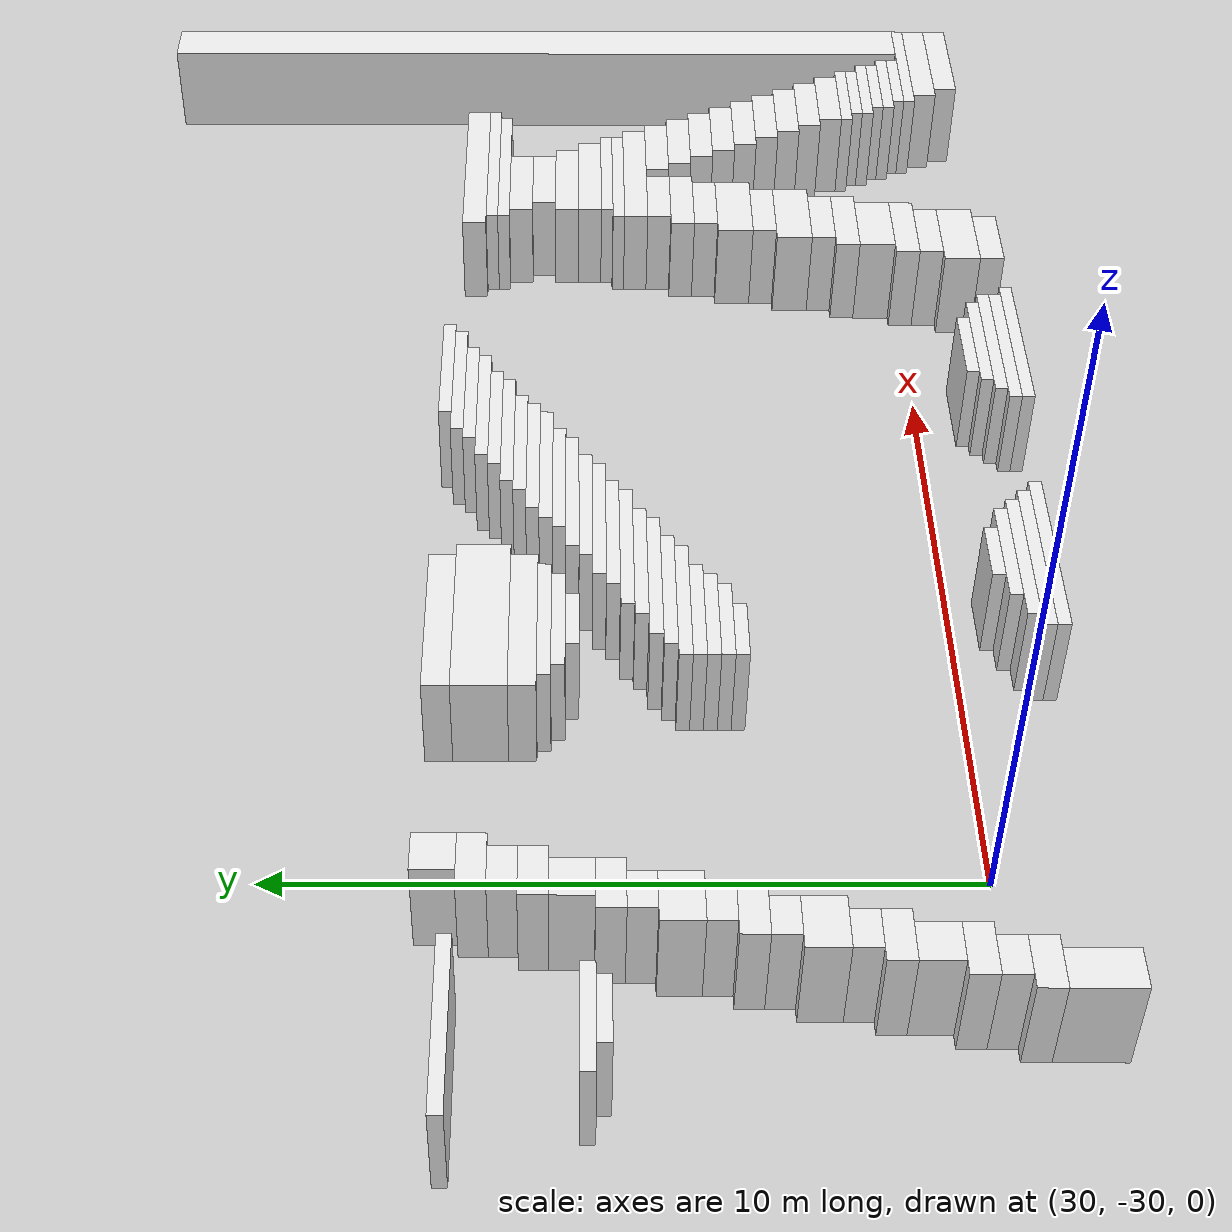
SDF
<sdf version="1.7">
 <world name="default">
  <model name="ground_plane">
   <static>1</static>
   <link name="link">
    <collision name="collision">
     <geometry><plane><normal>0 0 1</normal><size>120 120</size></plane></geometry>
    </collision>
    <visual name="visual">
     <geometry><plane><normal>0 0 1</normal><size>120 120</size></plane></geometry>
     <material>
      <script><uri>file://media/materials/scripts/gazebo.material</uri><name>Gazebo/Grey</name></script>
     </material>
    </visual>
   </link>
  </model>
  <model name="random_complex_03_model">
   <static>1</static>
   <link name="obs_2391">
    <pose>39.1000 -22.3000 0.8000 0 0 0</pose>
    <collision name="obs_2391_col"><geometry><box><size>2.2000 0.2000 1.6000</size></box></geometry></collision>
    <visual name="obs_2391_vis">
     <geometry><box><size>2.2000 0.2000 1.6000</size></box></geometry>
     <material>
      <script><uri>file://media/materials/scripts/gazebo.material</uri><name>Gazebo/White</name></script>
     </material>
    </visual>
   </link>
   <link name="obs_2392">
    <pose>33.5000 -22.4000 0.8000 0 0 0</pose>
    <collision name="obs_2392_col"><geometry><box><size>2.6000 0.4000 1.6000</size></box></geometry></collision>
    <visual name="obs_2392_vis">
     <geometry><box><size>2.6000 0.4000 1.6000</size></box></geometry>
     <material>
      <script><uri>file://media/materials/scripts/gazebo.material</uri><name>Gazebo/White</name></script>
     </material>
    </visual>
   </link>
   <link name="obs_2395">
    <pose>38.8000 -22.5000 0.8000 0 0 0</pose>
    <collision name="obs_2395_col"><geometry><box><size>2.4000 0.2000 1.6000</size></box></geometry></collision>
    <visual name="obs_2395_vis">
     <geometry><box><size>2.4000 0.2000 1.6000</size></box></geometry>
     <material>
      <script><uri>file://media/materials/scripts/gazebo.material</uri><name>Gazebo/White</name></script>
     </material>
    </visual>
   </link>
   <link name="obs_2397">
    <pose>29.3000 -22.5000 0.8000 0 0 0</pose>
    <collision name="obs_2397_col"><geometry><box><size>0.6000 0.6000 1.6000</size></box></geometry></collision>
    <visual name="obs_2397_vis">
     <geometry><box><size>0.6000 0.6000 1.6000</size></box></geometry>
     <material>
      <script><uri>file://media/materials/scripts/gazebo.material</uri><name>Gazebo/White</name></script>
     </material>
    </visual>
   </link>
   <link name="obs_2398">
    <pose>44.7000 -22.6000 0.8000 0 0 0</pose>
    <collision name="obs_2398_col"><geometry><box><size>3.4000 0.4000 1.6000</size></box></geometry></collision>
    <visual name="obs_2398_vis">
     <geometry><box><size>3.4000 0.4000 1.6000</size></box></geometry>
     <material>
      <script><uri>file://media/materials/scripts/gazebo.material</uri><name>Gazebo/White</name></script>
     </material>
    </visual>
   </link>
   <link name="obs_2400">
    <pose>26.7000 -22.7000 0.8000 0 0 0</pose>
    <collision name="obs_2400_col"><geometry><box><size>2.6000 0.2000 1.6000</size></box></geometry></collision>
    <visual name="obs_2400_vis">
     <geometry><box><size>2.6000 0.2000 1.6000</size></box></geometry>
     <material>
      <script><uri>file://media/materials/scripts/gazebo.material</uri><name>Gazebo/White</name></script>
     </material>
    </visual>
   </link>
   <link name="obs_2401">
    <pose>38.5000 -22.7000 0.8000 0 0 0</pose>
    <collision name="obs_2401_col"><geometry><box><size>2.2000 0.2000 1.6000</size></box></geometry></collision>
    <visual name="obs_2401_vis">
     <geometry><box><size>2.2000 0.2000 1.6000</size></box></geometry>
     <material>
      <script><uri>file://media/materials/scripts/gazebo.material</uri><name>Gazebo/White</name></script>
     </material>
    </visual>
   </link>
   <link name="obs_2404">
    <pose>38.2000 -22.9000 0.8000 0 0 0</pose>
    <collision name="obs_2404_col"><geometry><box><size>2.4000 0.2000 1.6000</size></box></geometry></collision>
    <visual name="obs_2404_vis">
     <geometry><box><size>2.4000 0.2000 1.6000</size></box></geometry>
     <material>
      <script><uri>file://media/materials/scripts/gazebo.material</uri><name>Gazebo/White</name></script>
     </material>
    </visual>
   </link>
   <link name="obs_2405">
    <pose>44.8000 -22.9000 0.8000 0 0 0</pose>
    <collision name="obs_2405_col"><geometry><box><size>3.2000 0.2000 1.6000</size></box></geometry></collision>
    <visual name="obs_2405_vis">
     <geometry><box><size>3.2000 0.2000 1.6000</size></box></geometry>
     <material>
      <script><uri>file://media/materials/scripts/gazebo.material</uri><name>Gazebo/White</name></script>
     </material>
    </visual>
   </link>
   <link name="obs_2407">
    <pose>29.2000 -23.0000 0.8000 0 0 0</pose>
    <collision name="obs_2407_col"><geometry><box><size>0.8000 0.4000 1.6000</size></box></geometry></collision>
    <visual name="obs_2407_vis">
     <geometry><box><size>0.8000 0.4000 1.6000</size></box></geometry>
     <material>
      <script><uri>file://media/materials/scripts/gazebo.material</uri><name>Gazebo/White</name></script>
     </material>
    </visual>
   </link>
   <link name="obs_2409">
    <pose>37.9000 -23.1000 0.8000 0 0 0</pose>
    <collision name="obs_2409_col"><geometry><box><size>2.2000 0.2000 1.6000</size></box></geometry></collision>
    <visual name="obs_2409_vis">
     <geometry><box><size>2.2000 0.2000 1.6000</size></box></geometry>
     <material>
      <script><uri>file://media/materials/scripts/gazebo.material</uri><name>Gazebo/White</name></script>
     </material>
    </visual>
   </link>
   <link name="obs_2410">
    <pose>44.7000 -23.1000 0.8000 0 0 0</pose>
    <collision name="obs_2410_col"><geometry><box><size>3.0000 0.2000 1.6000</size></box></geometry></collision>
    <visual name="obs_2410_vis">
     <geometry><box><size>3.0000 0.2000 1.6000</size></box></geometry>
     <material>
      <script><uri>file://media/materials/scripts/gazebo.material</uri><name>Gazebo/White</name></script>
     </material>
    </visual>
   </link>
   <link name="obs_2411">
    <pose>33.6000 -23.0000 0.8000 0 0 0</pose>
    <collision name="obs_2411_col"><geometry><box><size>2.8000 0.8000 1.6000</size></box></geometry></collision>
    <visual name="obs_2411_vis">
     <geometry><box><size>2.8000 0.8000 1.6000</size></box></geometry>
     <material>
      <script><uri>file://media/materials/scripts/gazebo.material</uri><name>Gazebo/White</name></script>
     </material>
    </visual>
   </link>
   <link name="obs_2415">
    <pose>37.6000 -23.3000 0.8000 0 0 0</pose>
    <collision name="obs_2415_col"><geometry><box><size>2.4000 0.2000 1.6000</size></box></geometry></collision>
    <visual name="obs_2415_vis">
     <geometry><box><size>2.4000 0.2000 1.6000</size></box></geometry>
     <material>
      <script><uri>file://media/materials/scripts/gazebo.material</uri><name>Gazebo/White</name></script>
     </material>
    </visual>
   </link>
   <link name="obs_2418">
    <pose>29.1000 -23.4000 0.8000 0 0 0</pose>
    <collision name="obs_2418_col"><geometry><box><size>0.6000 0.4000 1.6000</size></box></geometry></collision>
    <visual name="obs_2418_vis">
     <geometry><box><size>0.6000 0.4000 1.6000</size></box></geometry>
     <material>
      <script><uri>file://media/materials/scripts/gazebo.material</uri><name>Gazebo/White</name></script>
     </material>
    </visual>
   </link>
   <link name="obs_2419">
    <pose>44.2000 -23.4000 0.8000 0 0 0</pose>
    <collision name="obs_2419_col"><geometry><box><size>1.6000 0.4000 1.6000</size></box></geometry></collision>
    <visual name="obs_2419_vis">
     <geometry><box><size>1.6000 0.4000 1.6000</size></box></geometry>
     <material>
      <script><uri>file://media/materials/scripts/gazebo.material</uri><name>Gazebo/White</name></script>
     </material>
    </visual>
   </link>
   <link name="obs_2424">
    <pose>37.3000 -23.5000 0.8000 0 0 0</pose>
    <collision name="obs_2424_col"><geometry><box><size>2.2000 0.2000 1.6000</size></box></geometry></collision>
    <visual name="obs_2424_vis">
     <geometry><box><size>2.2000 0.2000 1.6000</size></box></geometry>
     <material>
      <script><uri>file://media/materials/scripts/gazebo.material</uri><name>Gazebo/White</name></script>
     </material>
    </visual>
   </link>
   <link name="obs_2425">
    <pose>33.5000 -23.6000 0.8000 0 0 0</pose>
    <collision name="obs_2425_col"><geometry><box><size>2.6000 0.4000 1.6000</size></box></geometry></collision>
    <visual name="obs_2425_vis">
     <geometry><box><size>2.6000 0.4000 1.6000</size></box></geometry>
     <material>
      <script><uri>file://media/materials/scripts/gazebo.material</uri><name>Gazebo/White</name></script>
     </material>
    </visual>
   </link>
   <link name="obs_2431">
    <pose>37.0000 -23.7000 0.8000 0 0 0</pose>
    <collision name="obs_2431_col"><geometry><box><size>2.4000 0.2000 1.6000</size></box></geometry></collision>
    <visual name="obs_2431_vis">
     <geometry><box><size>2.4000 0.2000 1.6000</size></box></geometry>
     <material>
      <script><uri>file://media/materials/scripts/gazebo.material</uri><name>Gazebo/White</name></script>
     </material>
    </visual>
   </link>
   <link name="obs_2433">
    <pose>29.0000 -23.8000 0.8000 0 0 0</pose>
    <collision name="obs_2433_col"><geometry><box><size>0.8000 0.4000 1.6000</size></box></geometry></collision>
    <visual name="obs_2433_vis">
     <geometry><box><size>0.8000 0.4000 1.6000</size></box></geometry>
     <material>
      <script><uri>file://media/materials/scripts/gazebo.material</uri><name>Gazebo/White</name></script>
     </material>
    </visual>
   </link>
   <link name="obs_2434">
    <pose>44.3000 -23.8000 0.8000 0 0 0</pose>
    <collision name="obs_2434_col"><geometry><box><size>1.4000 0.4000 1.6000</size></box></geometry></collision>
    <visual name="obs_2434_vis">
     <geometry><box><size>1.4000 0.4000 1.6000</size></box></geometry>
     <material>
      <script><uri>file://media/materials/scripts/gazebo.material</uri><name>Gazebo/White</name></script>
     </material>
    </visual>
   </link>
   <link name="obs_2437">
    <pose>33.5000 -23.9000 0.8000 0 0 0</pose>
    <collision name="obs_2437_col"><geometry><box><size>2.2000 0.2000 1.6000</size></box></geometry></collision>
    <visual name="obs_2437_vis">
     <geometry><box><size>2.2000 0.2000 1.6000</size></box></geometry>
     <material>
      <script><uri>file://media/materials/scripts/gazebo.material</uri><name>Gazebo/White</name></script>
     </material>
    </visual>
   </link>
   <link name="obs_2438">
    <pose>36.8000 -23.9000 0.8000 0 0 0</pose>
    <collision name="obs_2438_col"><geometry><box><size>2.4000 0.2000 1.6000</size></box></geometry></collision>
    <visual name="obs_2438_vis">
     <geometry><box><size>2.4000 0.2000 1.6000</size></box></geometry>
     <material>
      <script><uri>file://media/materials/scripts/gazebo.material</uri><name>Gazebo/White</name></script>
     </material>
    </visual>
   </link>
   <link name="obs_2446">
    <pose>33.5000 -24.1000 0.8000 0 0 0</pose>
    <collision name="obs_2446_col"><geometry><box><size>1.8000 0.2000 1.6000</size></box></geometry></collision>
    <visual name="obs_2446_vis">
     <geometry><box><size>1.8000 0.2000 1.6000</size></box></geometry>
     <material>
      <script><uri>file://media/materials/scripts/gazebo.material</uri><name>Gazebo/White</name></script>
     </material>
    </visual>
   </link>
   <link name="obs_2447">
    <pose>36.5000 -24.1000 0.8000 0 0 0</pose>
    <collision name="obs_2447_col"><geometry><box><size>2.2000 0.2000 1.6000</size></box></geometry></collision>
    <visual name="obs_2447_vis">
     <geometry><box><size>2.2000 0.2000 1.6000</size></box></geometry>
     <material>
      <script><uri>file://media/materials/scripts/gazebo.material</uri><name>Gazebo/White</name></script>
     </material>
    </visual>
   </link>
   <link name="obs_2448">
    <pose>44.3000 -24.2000 0.8000 0 0 0</pose>
    <collision name="obs_2448_col"><geometry><box><size>1.8000 0.4000 1.6000</size></box></geometry></collision>
    <visual name="obs_2448_vis">
     <geometry><box><size>1.8000 0.4000 1.6000</size></box></geometry>
     <material>
      <script><uri>file://media/materials/scripts/gazebo.material</uri><name>Gazebo/White</name></script>
     </material>
    </visual>
   </link>
   <link name="obs_2455">
    <pose>33.5000 -24.3000 0.8000 0 0 0</pose>
    <collision name="obs_2455_col"><geometry><box><size>1.0000 0.2000 1.6000</size></box></geometry></collision>
    <visual name="obs_2455_vis">
     <geometry><box><size>1.0000 0.2000 1.6000</size></box></geometry>
     <material>
      <script><uri>file://media/materials/scripts/gazebo.material</uri><name>Gazebo/White</name></script>
     </material>
    </visual>
   </link>
   <link name="obs_2456">
    <pose>36.2000 -24.3000 0.8000 0 0 0</pose>
    <collision name="obs_2456_col"><geometry><box><size>2.4000 0.2000 1.6000</size></box></geometry></collision>
    <visual name="obs_2456_vis">
     <geometry><box><size>2.4000 0.2000 1.6000</size></box></geometry>
     <material>
      <script><uri>file://media/materials/scripts/gazebo.material</uri><name>Gazebo/White</name></script>
     </material>
    </visual>
   </link>
   <link name="obs_2457">
    <pose>28.9000 -24.3000 0.8000 0 0 0</pose>
    <collision name="obs_2457_col"><geometry><box><size>0.6000 0.6000 1.6000</size></box></geometry></collision>
    <visual name="obs_2457_vis">
     <geometry><box><size>0.6000 0.6000 1.6000</size></box></geometry>
     <material>
      <script><uri>file://media/materials/scripts/gazebo.material</uri><name>Gazebo/White</name></script>
     </material>
    </visual>
   </link>
   <link name="obs_2461">
    <pose>26.8000 -24.5000 0.8000 0 0 0</pose>
    <collision name="obs_2461_col"><geometry><box><size>1.6000 0.2000 1.6000</size></box></geometry></collision>
    <visual name="obs_2461_vis">
     <geometry><box><size>1.6000 0.2000 1.6000</size></box></geometry>
     <material>
      <script><uri>file://media/materials/scripts/gazebo.material</uri><name>Gazebo/White</name></script>
     </material>
    </visual>
   </link>
   <link name="obs_2462">
    <pose>35.9000 -24.5000 0.8000 0 0 0</pose>
    <collision name="obs_2462_col"><geometry><box><size>2.2000 0.2000 1.6000</size></box></geometry></collision>
    <visual name="obs_2462_vis">
     <geometry><box><size>2.2000 0.2000 1.6000</size></box></geometry>
     <material>
      <script><uri>file://media/materials/scripts/gazebo.material</uri><name>Gazebo/White</name></script>
     </material>
    </visual>
   </link>
   <link name="obs_2464">
    <pose>44.4000 -24.6000 0.8000 0 0 0</pose>
    <collision name="obs_2464_col"><geometry><box><size>2.0000 0.4000 1.6000</size></box></geometry></collision>
    <visual name="obs_2464_vis">
     <geometry><box><size>2.0000 0.4000 1.6000</size></box></geometry>
     <material>
      <script><uri>file://media/materials/scripts/gazebo.material</uri><name>Gazebo/White</name></script>
     </material>
    </visual>
   </link>
   <link name="obs_2467">
    <pose>26.9000 -24.7000 0.8000 0 0 0</pose>
    <collision name="obs_2467_col"><geometry><box><size>1.0000 0.2000 1.6000</size></box></geometry></collision>
    <visual name="obs_2467_vis">
     <geometry><box><size>1.0000 0.2000 1.6000</size></box></geometry>
     <material>
      <script><uri>file://media/materials/scripts/gazebo.material</uri><name>Gazebo/White</name></script>
     </material>
    </visual>
   </link>
   <link name="obs_2468">
    <pose>35.6000 -24.7000 0.8000 0 0 0</pose>
    <collision name="obs_2468_col"><geometry><box><size>2.4000 0.2000 1.6000</size></box></geometry></collision>
    <visual name="obs_2468_vis">
     <geometry><box><size>2.4000 0.2000 1.6000</size></box></geometry>
     <material>
      <script><uri>file://media/materials/scripts/gazebo.material</uri><name>Gazebo/White</name></script>
     </material>
    </visual>
   </link>
   <link name="obs_2469">
    <pose>28.8000 -24.8000 0.8000 0 0 0</pose>
    <collision name="obs_2469_col"><geometry><box><size>0.8000 0.4000 1.6000</size></box></geometry></collision>
    <visual name="obs_2469_vis">
     <geometry><box><size>0.8000 0.4000 1.6000</size></box></geometry>
     <material>
      <script><uri>file://media/materials/scripts/gazebo.material</uri><name>Gazebo/White</name></script>
     </material>
    </visual>
   </link>
   <link name="obs_2473">
    <pose>35.3000 -24.9000 0.8000 0 0 0</pose>
    <collision name="obs_2473_col"><geometry><box><size>2.2000 0.2000 1.6000</size></box></geometry></collision>
    <visual name="obs_2473_vis">
     <geometry><box><size>2.2000 0.2000 1.6000</size></box></geometry>
     <material>
      <script><uri>file://media/materials/scripts/gazebo.material</uri><name>Gazebo/White</name></script>
     </material>
    </visual>
   </link>
   <link name="obs_2474">
    <pose>44.5000 -24.9000 0.8000 0 0 0</pose>
    <collision name="obs_2474_col"><geometry><box><size>2.2000 0.2000 1.6000</size></box></geometry></collision>
    <visual name="obs_2474_vis">
     <geometry><box><size>2.2000 0.2000 1.6000</size></box></geometry>
     <material>
      <script><uri>file://media/materials/scripts/gazebo.material</uri><name>Gazebo/White</name></script>
     </material>
    </visual>
   </link>
   <link name="obs_2479">
    <pose>35.0000 -25.1000 0.8000 0 0 0</pose>
    <collision name="obs_2479_col"><geometry><box><size>2.4000 0.2000 1.6000</size></box></geometry></collision>
    <visual name="obs_2479_vis">
     <geometry><box><size>2.4000 0.2000 1.6000</size></box></geometry>
     <material>
      <script><uri>file://media/materials/scripts/gazebo.material</uri><name>Gazebo/White</name></script>
     </material>
    </visual>
   </link>
   <link name="obs_2480">
    <pose>44.4000 -25.1000 0.8000 0 0 0</pose>
    <collision name="obs_2480_col"><geometry><box><size>2.4000 0.2000 1.6000</size></box></geometry></collision>
    <visual name="obs_2480_vis">
     <geometry><box><size>2.4000 0.2000 1.6000</size></box></geometry>
     <material>
      <script><uri>file://media/materials/scripts/gazebo.material</uri><name>Gazebo/White</name></script>
     </material>
    </visual>
   </link>
   <link name="obs_2482">
    <pose>28.7000 -25.2000 0.8000 0 0 0</pose>
    <collision name="obs_2482_col"><geometry><box><size>0.6000 0.4000 1.6000</size></box></geometry></collision>
    <visual name="obs_2482_vis">
     <geometry><box><size>0.6000 0.4000 1.6000</size></box></geometry>
     <material>
      <script><uri>file://media/materials/scripts/gazebo.material</uri><name>Gazebo/White</name></script>
     </material>
    </visual>
   </link>
   <link name="obs_2486">
    <pose>34.7000 -25.3000 0.8000 0 0 0</pose>
    <collision name="obs_2486_col"><geometry><box><size>2.2000 0.2000 1.6000</size></box></geometry></collision>
    <visual name="obs_2486_vis">
     <geometry><box><size>2.2000 0.2000 1.6000</size></box></geometry>
     <material>
      <script><uri>file://media/materials/scripts/gazebo.material</uri><name>Gazebo/White</name></script>
     </material>
    </visual>
   </link>
   <link name="obs_2489">
    <pose>44.5000 -25.4000 0.8000 0 0 0</pose>
    <collision name="obs_2489_col"><geometry><box><size>2.6000 0.4000 1.6000</size></box></geometry></collision>
    <visual name="obs_2489_vis">
     <geometry><box><size>2.6000 0.4000 1.6000</size></box></geometry>
     <material>
      <script><uri>file://media/materials/scripts/gazebo.material</uri><name>Gazebo/White</name></script>
     </material>
    </visual>
   </link>
   <link name="obs_2493">
    <pose>34.4000 -25.5000 0.8000 0 0 0</pose>
    <collision name="obs_2493_col"><geometry><box><size>2.4000 0.2000 1.6000</size></box></geometry></collision>
    <visual name="obs_2493_vis">
     <geometry><box><size>2.4000 0.2000 1.6000</size></box></geometry>
     <material>
      <script><uri>file://media/materials/scripts/gazebo.material</uri><name>Gazebo/White</name></script>
     </material>
    </visual>
   </link>
   <link name="obs_2499">
    <pose>34.1000 -25.7000 0.8000 0 0 0</pose>
    <collision name="obs_2499_col"><geometry><box><size>2.2000 0.2000 1.6000</size></box></geometry></collision>
    <visual name="obs_2499_vis">
     <geometry><box><size>2.2000 0.2000 1.6000</size></box></geometry>
     <material>
      <script><uri>file://media/materials/scripts/gazebo.material</uri><name>Gazebo/White</name></script>
     </material>
    </visual>
   </link>
   <link name="obs_2500">
    <pose>28.6000 -25.7000 0.8000 0 0 0</pose>
    <collision name="obs_2500_col"><geometry><box><size>0.8000 0.6000 1.6000</size></box></geometry></collision>
    <visual name="obs_2500_vis">
     <geometry><box><size>0.8000 0.6000 1.6000</size></box></geometry>
     <material>
      <script><uri>file://media/materials/scripts/gazebo.material</uri><name>Gazebo/White</name></script>
     </material>
    </visual>
   </link>
   <link name="obs_2501">
    <pose>43.8000 -25.8000 0.8000 0 0 0</pose>
    <collision name="obs_2501_col"><geometry><box><size>1.2000 0.4000 1.6000</size></box></geometry></collision>
    <visual name="obs_2501_vis">
     <geometry><box><size>1.2000 0.4000 1.6000</size></box></geometry>
     <material>
      <script><uri>file://media/materials/scripts/gazebo.material</uri><name>Gazebo/White</name></script>
     </material>
    </visual>
   </link>
   <link name="obs_2502">
    <pose>45.3000 -25.8000 0.8000 0 0 0</pose>
    <collision name="obs_2502_col"><geometry><box><size>1.4000 0.4000 1.6000</size></box></geometry></collision>
    <visual name="obs_2502_vis">
     <geometry><box><size>1.4000 0.4000 1.6000</size></box></geometry>
     <material>
      <script><uri>file://media/materials/scripts/gazebo.material</uri><name>Gazebo/White</name></script>
     </material>
    </visual>
   </link>
   <link name="obs_2507">
    <pose>33.9000 -25.9000 0.8000 0 0 0</pose>
    <collision name="obs_2507_col"><geometry><box><size>2.2000 0.2000 1.6000</size></box></geometry></collision>
    <visual name="obs_2507_vis">
     <geometry><box><size>2.2000 0.2000 1.6000</size></box></geometry>
     <material>
      <script><uri>file://media/materials/scripts/gazebo.material</uri><name>Gazebo/White</name></script>
     </material>
    </visual>
   </link>
   <link name="obs_2515">
    <pose>33.7000 -26.1000 0.8000 0 0 0</pose>
    <collision name="obs_2515_col"><geometry><box><size>1.8000 0.2000 1.6000</size></box></geometry></collision>
    <visual name="obs_2515_vis">
     <geometry><box><size>1.8000 0.2000 1.6000</size></box></geometry>
     <material>
      <script><uri>file://media/materials/scripts/gazebo.material</uri><name>Gazebo/White</name></script>
     </material>
    </visual>
   </link>
   <link name="obs_2516">
    <pose>28.5000 -26.2000 0.8000 0 0 0</pose>
    <collision name="obs_2516_col"><geometry><box><size>0.6000 0.4000 1.6000</size></box></geometry></collision>
    <visual name="obs_2516_vis">
     <geometry><box><size>0.6000 0.4000 1.6000</size></box></geometry>
     <material>
      <script><uri>file://media/materials/scripts/gazebo.material</uri><name>Gazebo/White</name></script>
     </material>
    </visual>
   </link>
   <link name="obs_2517">
    <pose>43.7000 -26.2000 0.8000 0 0 0</pose>
    <collision name="obs_2517_col"><geometry><box><size>1.4000 0.4000 1.6000</size></box></geometry></collision>
    <visual name="obs_2517_vis">
     <geometry><box><size>1.4000 0.4000 1.6000</size></box></geometry>
     <material>
      <script><uri>file://media/materials/scripts/gazebo.material</uri><name>Gazebo/White</name></script>
     </material>
    </visual>
   </link>
   <link name="obs_2518">
    <pose>45.5000 -26.2000 0.8000 0 0 0</pose>
    <collision name="obs_2518_col"><geometry><box><size>1.4000 0.4000 1.6000</size></box></geometry></collision>
    <visual name="obs_2518_vis">
     <geometry><box><size>1.4000 0.4000 1.6000</size></box></geometry>
     <material>
      <script><uri>file://media/materials/scripts/gazebo.material</uri><name>Gazebo/White</name></script>
     </material>
    </visual>
   </link>
   <link name="obs_2524">
    <pose>33.6000 -26.3000 0.8000 0 0 0</pose>
    <collision name="obs_2524_col"><geometry><box><size>1.6000 0.2000 1.6000</size></box></geometry></collision>
    <visual name="obs_2524_vis">
     <geometry><box><size>1.6000 0.2000 1.6000</size></box></geometry>
     <material>
      <script><uri>file://media/materials/scripts/gazebo.material</uri><name>Gazebo/White</name></script>
     </material>
    </visual>
   </link>
   <link name="obs_2529">
    <pose>33.5000 -26.5000 0.8000 0 0 0</pose>
    <collision name="obs_2529_col"><geometry><box><size>1.4000 0.2000 1.6000</size></box></geometry></collision>
    <visual name="obs_2529_vis">
     <geometry><box><size>1.4000 0.2000 1.6000</size></box></geometry>
     <material>
      <script><uri>file://media/materials/scripts/gazebo.material</uri><name>Gazebo/White</name></script>
     </material>
    </visual>
   </link>
   <link name="obs_2530">
    <pose>28.4000 -26.6000 0.8000 0 0 0</pose>
    <collision name="obs_2530_col"><geometry><box><size>0.8000 0.4000 1.6000</size></box></geometry></collision>
    <visual name="obs_2530_vis">
     <geometry><box><size>0.8000 0.4000 1.6000</size></box></geometry>
     <material>
      <script><uri>file://media/materials/scripts/gazebo.material</uri><name>Gazebo/White</name></script>
     </material>
    </visual>
   </link>
   <link name="obs_2531">
    <pose>43.6000 -26.6000 0.8000 0 0 0</pose>
    <collision name="obs_2531_col"><geometry><box><size>1.2000 0.4000 1.6000</size></box></geometry></collision>
    <visual name="obs_2531_vis">
     <geometry><box><size>1.2000 0.4000 1.6000</size></box></geometry>
     <material>
      <script><uri>file://media/materials/scripts/gazebo.material</uri><name>Gazebo/White</name></script>
     </material>
    </visual>
   </link>
   <link name="obs_2532">
    <pose>45.7000 -26.6000 0.8000 0 0 0</pose>
    <collision name="obs_2532_col"><geometry><box><size>1.4000 0.4000 1.6000</size></box></geometry></collision>
    <visual name="obs_2532_vis">
     <geometry><box><size>1.4000 0.4000 1.6000</size></box></geometry>
     <material>
      <script><uri>file://media/materials/scripts/gazebo.material</uri><name>Gazebo/White</name></script>
     </material>
    </visual>
   </link>
   <link name="obs_2536">
    <pose>33.3000 -26.7000 0.8000 0 0 0</pose>
    <collision name="obs_2536_col"><geometry><box><size>1.0000 0.2000 1.6000</size></box></geometry></collision>
    <visual name="obs_2536_vis">
     <geometry><box><size>1.0000 0.2000 1.6000</size></box></geometry>
     <material>
      <script><uri>file://media/materials/scripts/gazebo.material</uri><name>Gazebo/White</name></script>
     </material>
    </visual>
   </link>
   <link name="obs_2546">
    <pose>28.3000 -27.0000 0.8000 0 0 0</pose>
    <collision name="obs_2546_col"><geometry><box><size>0.6000 0.4000 1.6000</size></box></geometry></collision>
    <visual name="obs_2546_vis">
     <geometry><box><size>0.6000 0.4000 1.6000</size></box></geometry>
     <material>
      <script><uri>file://media/materials/scripts/gazebo.material</uri><name>Gazebo/White</name></script>
     </material>
    </visual>
   </link>
   <link name="obs_2547">
    <pose>45.9000 -27.0000 0.8000 0 0 0</pose>
    <collision name="obs_2547_col"><geometry><box><size>1.4000 0.4000 1.6000</size></box></geometry></collision>
    <visual name="obs_2547_vis">
     <geometry><box><size>1.4000 0.4000 1.6000</size></box></geometry>
     <material>
      <script><uri>file://media/materials/scripts/gazebo.material</uri><name>Gazebo/White</name></script>
     </material>
    </visual>
   </link>
   <link name="obs_2548">
    <pose>43.5000 -27.1000 0.8000 0 0 0</pose>
    <collision name="obs_2548_col"><geometry><box><size>1.4000 0.6000 1.6000</size></box></geometry></collision>
    <visual name="obs_2548_vis">
     <geometry><box><size>1.4000 0.6000 1.6000</size></box></geometry>
     <material>
      <script><uri>file://media/materials/scripts/gazebo.material</uri><name>Gazebo/White</name></script>
     </material>
    </visual>
   </link>
   <link name="obs_2550">
    <pose>46.1000 -27.4000 0.8000 0 0 0</pose>
    <collision name="obs_2550_col"><geometry><box><size>1.4000 0.4000 1.6000</size></box></geometry></collision>
    <visual name="obs_2550_vis">
     <geometry><box><size>1.4000 0.4000 1.6000</size></box></geometry>
     <material>
      <script><uri>file://media/materials/scripts/gazebo.material</uri><name>Gazebo/White</name></script>
     </material>
    </visual>
   </link>
   <link name="obs_2552">
    <pose>28.2000 -27.5000 0.8000 0 0 0</pose>
    <collision name="obs_2552_col"><geometry><box><size>0.8000 0.6000 1.6000</size></box></geometry></collision>
    <visual name="obs_2552_vis">
     <geometry><box><size>0.8000 0.6000 1.6000</size></box></geometry>
     <material>
      <script><uri>file://media/materials/scripts/gazebo.material</uri><name>Gazebo/White</name></script>
     </material>
    </visual>
   </link>
   <link name="obs_2553">
    <pose>43.4000 -27.6000 0.8000 0 0 0</pose>
    <collision name="obs_2553_col"><geometry><box><size>1.2000 0.4000 1.6000</size></box></geometry></collision>
    <visual name="obs_2553_vis">
     <geometry><box><size>1.2000 0.4000 1.6000</size></box></geometry>
     <material>
      <script><uri>file://media/materials/scripts/gazebo.material</uri><name>Gazebo/White</name></script>
     </material>
    </visual>
   </link>
   <link name="obs_2555">
    <pose>46.3000 -27.8000 0.8000 0 0 0</pose>
    <collision name="obs_2555_col"><geometry><box><size>1.4000 0.4000 1.6000</size></box></geometry></collision>
    <visual name="obs_2555_vis">
     <geometry><box><size>1.4000 0.4000 1.6000</size></box></geometry>
     <material>
      <script><uri>file://media/materials/scripts/gazebo.material</uri><name>Gazebo/White</name></script>
     </material>
    </visual>
   </link>
   <link name="obs_2556">
    <pose>28.1000 -28.0000 0.8000 0 0 0</pose>
    <collision name="obs_2556_col"><geometry><box><size>0.6000 0.4000 1.6000</size></box></geometry></collision>
    <visual name="obs_2556_vis">
     <geometry><box><size>0.6000 0.4000 1.6000</size></box></geometry>
     <material>
      <script><uri>file://media/materials/scripts/gazebo.material</uri><name>Gazebo/White</name></script>
     </material>
    </visual>
   </link>
   <link name="obs_2558">
    <pose>43.3000 -28.1000 0.8000 0 0 0</pose>
    <collision name="obs_2558_col"><geometry><box><size>1.4000 0.6000 1.6000</size></box></geometry></collision>
    <visual name="obs_2558_vis">
     <geometry><box><size>1.4000 0.6000 1.6000</size></box></geometry>
     <material>
      <script><uri>file://media/materials/scripts/gazebo.material</uri><name>Gazebo/White</name></script>
     </material>
    </visual>
   </link>
   <link name="obs_2559">
    <pose>46.5000 -28.2000 0.8000 0 0 0</pose>
    <collision name="obs_2559_col"><geometry><box><size>1.4000 0.4000 1.6000</size></box></geometry></collision>
    <visual name="obs_2559_vis">
     <geometry><box><size>1.4000 0.4000 1.6000</size></box></geometry>
     <material>
      <script><uri>file://media/materials/scripts/gazebo.material</uri><name>Gazebo/White</name></script>
     </material>
    </visual>
   </link>
   <link name="obs_2561">
    <pose>28.0000 -28.4000 0.8000 0 0 0</pose>
    <collision name="obs_2561_col"><geometry><box><size>0.8000 0.4000 1.6000</size></box></geometry></collision>
    <visual name="obs_2561_vis">
     <geometry><box><size>0.8000 0.4000 1.6000</size></box></geometry>
     <material>
      <script><uri>file://media/materials/scripts/gazebo.material</uri><name>Gazebo/White</name></script>
     </material>
    </visual>
   </link>
   <link name="obs_2563">
    <pose>43.2000 -28.6000 0.8000 0 0 0</pose>
    <collision name="obs_2563_col"><geometry><box><size>1.2000 0.4000 1.6000</size></box></geometry></collision>
    <visual name="obs_2563_vis">
     <geometry><box><size>1.2000 0.4000 1.6000</size></box></geometry>
     <material>
      <script><uri>file://media/materials/scripts/gazebo.material</uri><name>Gazebo/White</name></script>
     </material>
    </visual>
   </link>
   <link name="obs_2564">
    <pose>46.7000 -28.6000 0.8000 0 0 0</pose>
    <collision name="obs_2564_col"><geometry><box><size>1.4000 0.4000 1.6000</size></box></geometry></collision>
    <visual name="obs_2564_vis">
     <geometry><box><size>1.4000 0.4000 1.6000</size></box></geometry>
     <material>
      <script><uri>file://media/materials/scripts/gazebo.material</uri><name>Gazebo/White</name></script>
     </material>
    </visual>
   </link>
   <link name="obs_2571">
    <pose>27.9000 -28.9000 0.8000 0 0 0</pose>
    <collision name="obs_2571_col"><geometry><box><size>0.6000 0.6000 1.6000</size></box></geometry></collision>
    <visual name="obs_2571_vis">
     <geometry><box><size>0.6000 0.6000 1.6000</size></box></geometry>
     <material>
      <script><uri>file://media/materials/scripts/gazebo.material</uri><name>Gazebo/White</name></script>
     </material>
    </visual>
   </link>
   <link name="obs_2572">
    <pose>43.1000 -29.0000 0.8000 0 0 0</pose>
    <collision name="obs_2572_col"><geometry><box><size>1.4000 0.4000 1.6000</size></box></geometry></collision>
    <visual name="obs_2572_vis">
     <geometry><box><size>1.4000 0.4000 1.6000</size></box></geometry>
     <material>
      <script><uri>file://media/materials/scripts/gazebo.material</uri><name>Gazebo/White</name></script>
     </material>
    </visual>
   </link>
   <link name="obs_2573">
    <pose>46.9000 -29.0000 0.8000 0 0 0</pose>
    <collision name="obs_2573_col"><geometry><box><size>1.4000 0.4000 1.6000</size></box></geometry></collision>
    <visual name="obs_2573_vis">
     <geometry><box><size>1.4000 0.4000 1.6000</size></box></geometry>
     <material>
      <script><uri>file://media/materials/scripts/gazebo.material</uri><name>Gazebo/White</name></script>
     </material>
    </visual>
   </link>
   <link name="obs_2581">
    <pose>47.0000 -29.3000 0.8000 0 0 0</pose>
    <collision name="obs_2581_col"><geometry><box><size>1.6000 0.2000 1.6000</size></box></geometry></collision>
    <visual name="obs_2581_vis">
     <geometry><box><size>1.6000 0.2000 1.6000</size></box></geometry>
     <material>
      <script><uri>file://media/materials/scripts/gazebo.material</uri><name>Gazebo/White</name></script>
     </material>
    </visual>
   </link>
   <link name="obs_2582">
    <pose>27.8000 -29.4000 0.8000 0 0 0</pose>
    <collision name="obs_2582_col"><geometry><box><size>0.8000 0.4000 1.6000</size></box></geometry></collision>
    <visual name="obs_2582_vis">
     <geometry><box><size>0.8000 0.4000 1.6000</size></box></geometry>
     <material>
      <script><uri>file://media/materials/scripts/gazebo.material</uri><name>Gazebo/White</name></script>
     </material>
    </visual>
   </link>
   <link name="obs_2586">
    <pose>47.1000 -29.5000 0.8000 0 0 0</pose>
    <collision name="obs_2586_col"><geometry><box><size>1.4000 0.2000 1.6000</size></box></geometry></collision>
    <visual name="obs_2586_vis">
     <geometry><box><size>1.4000 0.2000 1.6000</size></box></geometry>
     <material>
      <script><uri>file://media/materials/scripts/gazebo.material</uri><name>Gazebo/White</name></script>
     </material>
    </visual>
   </link>
   <link name="obs_2587">
    <pose>43.0000 -29.5000 0.8000 0 0 0</pose>
    <collision name="obs_2587_col"><geometry><box><size>1.2000 0.6000 1.6000</size></box></geometry></collision>
    <visual name="obs_2587_vis">
     <geometry><box><size>1.2000 0.6000 1.6000</size></box></geometry>
     <material>
      <script><uri>file://media/materials/scripts/gazebo.material</uri><name>Gazebo/White</name></script>
     </material>
    </visual>
   </link>
   <link name="obs_2592">
    <pose>47.2000 -29.7000 0.8000 0 0 0</pose>
    <collision name="obs_2592_col"><geometry><box><size>1.6000 0.2000 1.6000</size></box></geometry></collision>
    <visual name="obs_2592_vis">
     <geometry><box><size>1.6000 0.2000 1.6000</size></box></geometry>
     <material>
      <script><uri>file://media/materials/scripts/gazebo.material</uri><name>Gazebo/White</name></script>
     </material>
    </visual>
   </link>
   <link name="obs_2593">
    <pose>27.7000 -29.8000 0.8000 0 0 0</pose>
    <collision name="obs_2593_col"><geometry><box><size>0.6000 0.4000 1.6000</size></box></geometry></collision>
    <visual name="obs_2593_vis">
     <geometry><box><size>0.6000 0.4000 1.6000</size></box></geometry>
     <material>
      <script><uri>file://media/materials/scripts/gazebo.material</uri><name>Gazebo/White</name></script>
     </material>
    </visual>
   </link>
   <link name="obs_2597">
    <pose>47.3000 -29.9000 0.8000 0 0 0</pose>
    <collision name="obs_2597_col"><geometry><box><size>1.4000 0.2000 1.6000</size></box></geometry></collision>
    <visual name="obs_2597_vis">
     <geometry><box><size>1.4000 0.2000 1.6000</size></box></geometry>
     <material>
      <script><uri>file://media/materials/scripts/gazebo.material</uri><name>Gazebo/White</name></script>
     </material>
    </visual>
   </link>
   <link name="obs_2598">
    <pose>42.9000 -30.0000 0.8000 0 0 0</pose>
    <collision name="obs_2598_col"><geometry><box><size>1.4000 0.4000 1.6000</size></box></geometry></collision>
    <visual name="obs_2598_vis">
     <geometry><box><size>1.4000 0.4000 1.6000</size></box></geometry>
     <material>
      <script><uri>file://media/materials/scripts/gazebo.material</uri><name>Gazebo/White</name></script>
     </material>
    </visual>
   </link>
   <link name="obs_2602">
    <pose>47.4000 -30.1000 0.8000 0 0 0</pose>
    <collision name="obs_2602_col"><geometry><box><size>1.6000 0.2000 1.6000</size></box></geometry></collision>
    <visual name="obs_2602_vis">
     <geometry><box><size>1.6000 0.2000 1.6000</size></box></geometry>
     <material>
      <script><uri>file://media/materials/scripts/gazebo.material</uri><name>Gazebo/White</name></script>
     </material>
    </visual>
   </link>
   <link name="obs_2604">
    <pose>48.8000 -23.6000 0.8000 0 0 0</pose>
    <collision name="obs_2604_col"><geometry><box><size>0.8000 13.6000 1.6000</size></box></geometry></collision>
    <visual name="obs_2604_vis">
     <geometry><box><size>0.8000 13.6000 1.6000</size></box></geometry>
     <material>
      <script><uri>file://media/materials/scripts/gazebo.material</uri><name>Gazebo/White</name></script>
     </material>
    </visual>
   </link>
   <link name="obs_2605">
    <pose>27.6000 -30.2000 0.8000 0 0 0</pose>
    <collision name="obs_2605_col"><geometry><box><size>0.8000 0.4000 1.6000</size></box></geometry></collision>
    <visual name="obs_2605_vis">
     <geometry><box><size>0.8000 0.4000 1.6000</size></box></geometry>
     <material>
      <script><uri>file://media/materials/scripts/gazebo.material</uri><name>Gazebo/White</name></script>
     </material>
    </visual>
   </link>
   <link name="obs_2608">
    <pose>47.5000 -30.3000 0.8000 0 0 0</pose>
    <collision name="obs_2608_col"><geometry><box><size>1.4000 0.2000 1.6000</size></box></geometry></collision>
    <visual name="obs_2608_vis">
     <geometry><box><size>1.4000 0.2000 1.6000</size></box></geometry>
     <material>
      <script><uri>file://media/materials/scripts/gazebo.material</uri><name>Gazebo/White</name></script>
     </material>
    </visual>
   </link>
   <link name="obs_2610">
    <pose>42.8000 -30.4000 0.8000 0 0 0</pose>
    <collision name="obs_2610_col"><geometry><box><size>1.2000 0.4000 1.6000</size></box></geometry></collision>
    <visual name="obs_2610_vis">
     <geometry><box><size>1.2000 0.4000 1.6000</size></box></geometry>
     <material>
      <script><uri>file://media/materials/scripts/gazebo.material</uri><name>Gazebo/White</name></script>
     </material>
    </visual>
   </link>
   <link name="obs_2613">
    <pose>34.9000 -30.5000 0.8000 0 0 0</pose>
    <collision name="obs_2613_col"><geometry><box><size>1.0000 0.2000 1.6000</size></box></geometry></collision>
    <visual name="obs_2613_vis">
     <geometry><box><size>1.0000 0.2000 1.6000</size></box></geometry>
     <material>
      <script><uri>file://media/materials/scripts/gazebo.material</uri><name>Gazebo/White</name></script>
     </material>
    </visual>
   </link>
   <link name="obs_2614">
    <pose>48.0000 -30.5000 0.8000 0 0 0</pose>
    <collision name="obs_2614_col"><geometry><box><size>2.4000 0.2000 1.6000</size></box></geometry></collision>
    <visual name="obs_2614_vis">
     <geometry><box><size>2.4000 0.2000 1.6000</size></box></geometry>
     <material>
      <script><uri>file://media/materials/scripts/gazebo.material</uri><name>Gazebo/White</name></script>
     </material>
    </visual>
   </link>
   <link name="obs_2618">
    <pose>34.9000 -30.7000 0.8000 0 0 0</pose>
    <collision name="obs_2618_col"><geometry><box><size>1.8000 0.2000 1.6000</size></box></geometry></collision>
    <visual name="obs_2618_vis">
     <geometry><box><size>1.8000 0.2000 1.6000</size></box></geometry>
     <material>
      <script><uri>file://media/materials/scripts/gazebo.material</uri><name>Gazebo/White</name></script>
     </material>
    </visual>
   </link>
   <link name="obs_2619">
    <pose>39.7000 -30.7000 0.8000 0 0 0</pose>
    <collision name="obs_2619_col"><geometry><box><size>1.4000 0.2000 1.6000</size></box></geometry></collision>
    <visual name="obs_2619_vis">
     <geometry><box><size>1.4000 0.2000 1.6000</size></box></geometry>
     <material>
      <script><uri>file://media/materials/scripts/gazebo.material</uri><name>Gazebo/White</name></script>
     </material>
    </visual>
   </link>
   <link name="obs_2621">
    <pose>48.1000 -30.8000 0.8000 0 0 0</pose>
    <collision name="obs_2621_col"><geometry><box><size>2.2000 0.4000 1.6000</size></box></geometry></collision>
    <visual name="obs_2621_vis">
     <geometry><box><size>2.2000 0.4000 1.6000</size></box></geometry>
     <material>
      <script><uri>file://media/materials/scripts/gazebo.material</uri><name>Gazebo/White</name></script>
     </material>
    </visual>
   </link>
   <link name="obs_2624">
    <pose>34.8000 -30.9000 0.8000 0 0 0</pose>
    <collision name="obs_2624_col"><geometry><box><size>2.4000 0.2000 1.6000</size></box></geometry></collision>
    <visual name="obs_2624_vis">
     <geometry><box><size>2.4000 0.2000 1.6000</size></box></geometry>
     <material>
      <script><uri>file://media/materials/scripts/gazebo.material</uri><name>Gazebo/White</name></script>
     </material>
    </visual>
   </link>
   <link name="obs_2625">
    <pose>39.8000 -30.9000 0.8000 0 0 0</pose>
    <collision name="obs_2625_col"><geometry><box><size>2.0000 0.2000 1.6000</size></box></geometry></collision>
    <visual name="obs_2625_vis">
     <geometry><box><size>2.0000 0.2000 1.6000</size></box></geometry>
     <material>
      <script><uri>file://media/materials/scripts/gazebo.material</uri><name>Gazebo/White</name></script>
     </material>
    </visual>
   </link>
   <link name="obs_2626">
    <pose>42.7000 -30.9000 0.8000 0 0 0</pose>
    <collision name="obs_2626_col"><geometry><box><size>1.4000 0.6000 1.6000</size></box></geometry></collision>
    <visual name="obs_2626_vis">
     <geometry><box><size>1.4000 0.6000 1.6000</size></box></geometry>
     <material>
      <script><uri>file://media/materials/scripts/gazebo.material</uri><name>Gazebo/White</name></script>
     </material>
    </visual>
   </link>
   <link name="obs_2630">
    <pose>34.8000 -31.1000 0.8000 0 0 0</pose>
    <collision name="obs_2630_col"><geometry><box><size>2.8000 0.2000 1.6000</size></box></geometry></collision>
    <visual name="obs_2630_vis">
     <geometry><box><size>2.8000 0.2000 1.6000</size></box></geometry>
     <material>
      <script><uri>file://media/materials/scripts/gazebo.material</uri><name>Gazebo/White</name></script>
     </material>
    </visual>
   </link>
   <link name="obs_2631">
    <pose>39.8000 -31.1000 0.8000 0 0 0</pose>
    <collision name="obs_2631_col"><geometry><box><size>2.4000 0.2000 1.6000</size></box></geometry></collision>
    <visual name="obs_2631_vis">
     <geometry><box><size>2.4000 0.2000 1.6000</size></box></geometry>
     <material>
      <script><uri>file://media/materials/scripts/gazebo.material</uri><name>Gazebo/White</name></script>
     </material>
    </visual>
   </link>
   <link name="obs_2632">
    <pose>27.5000 -30.9000 0.8000 0 0 0</pose>
    <collision name="obs_2632_col"><geometry><box><size>0.6000 1.0000 1.6000</size></box></geometry></collision>
    <visual name="obs_2632_vis">
     <geometry><box><size>0.6000 1.0000 1.6000</size></box></geometry>
     <material>
      <script><uri>file://media/materials/scripts/gazebo.material</uri><name>Gazebo/White</name></script>
     </material>
    </visual>
   </link>
   <link name="obs_2633">
    <pose>48.2000 -31.2000 0.8000 0 0 0</pose>
    <collision name="obs_2633_col"><geometry><box><size>2.0000 0.4000 1.6000</size></box></geometry></collision>
    <visual name="obs_2633_vis">
     <geometry><box><size>2.0000 0.4000 1.6000</size></box></geometry>
     <material>
      <script><uri>file://media/materials/scripts/gazebo.material</uri><name>Gazebo/White</name></script>
     </material>
    </visual>
   </link>
   <link name="obs_2637">
    <pose>34.9000 -31.3000 0.8000 0 0 0</pose>
    <collision name="obs_2637_col"><geometry><box><size>3.0000 0.2000 1.6000</size></box></geometry></collision>
    <visual name="obs_2637_vis">
     <geometry><box><size>3.0000 0.2000 1.6000</size></box></geometry>
     <material>
      <script><uri>file://media/materials/scripts/gazebo.material</uri><name>Gazebo/White</name></script>
     </material>
    </visual>
   </link>
   <link name="obs_2638">
    <pose>39.7000 -31.3000 0.8000 0 0 0</pose>
    <collision name="obs_2638_col"><geometry><box><size>2.6000 0.2000 1.6000</size></box></geometry></collision>
    <visual name="obs_2638_vis">
     <geometry><box><size>2.6000 0.2000 1.6000</size></box></geometry>
     <material>
      <script><uri>file://media/materials/scripts/gazebo.material</uri><name>Gazebo/White</name></script>
     </material>
    </visual>
   </link>
   <link name="obs_2639">
    <pose>42.6000 -31.4000 0.8000 0 0 0</pose>
    <collision name="obs_2639_col"><geometry><box><size>1.2000 0.4000 1.6000</size></box></geometry></collision>
    <visual name="obs_2639_vis">
     <geometry><box><size>1.2000 0.4000 1.6000</size></box></geometry>
     <material>
      <script><uri>file://media/materials/scripts/gazebo.material</uri><name>Gazebo/White</name></script>
     </material>
    </visual>
   </link>
   <link name="obs_2643">
    <pose>39.8000 -31.5000 0.8000 0 0 0</pose>
    <collision name="obs_2643_col"><geometry><box><size>2.8000 0.2000 1.6000</size></box></geometry></collision>
    <visual name="obs_2643_vis">
     <geometry><box><size>2.8000 0.2000 1.6000</size></box></geometry>
     <material>
      <script><uri>file://media/materials/scripts/gazebo.material</uri><name>Gazebo/White</name></script>
     </material>
    </visual>
   </link>
  </model>
 </world>
</sdf>
